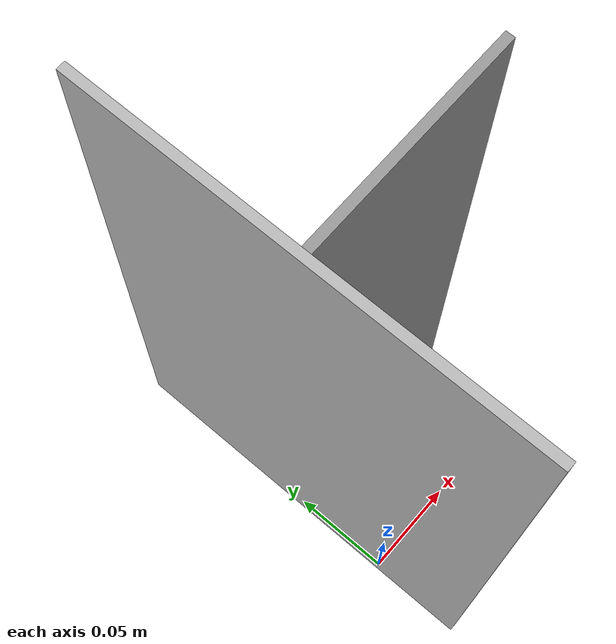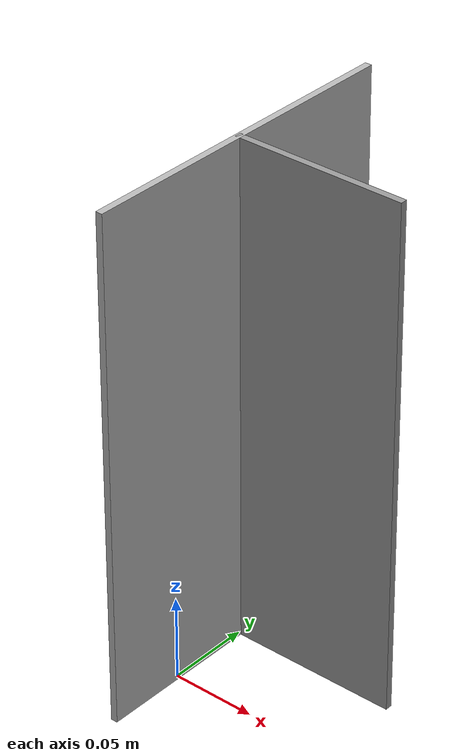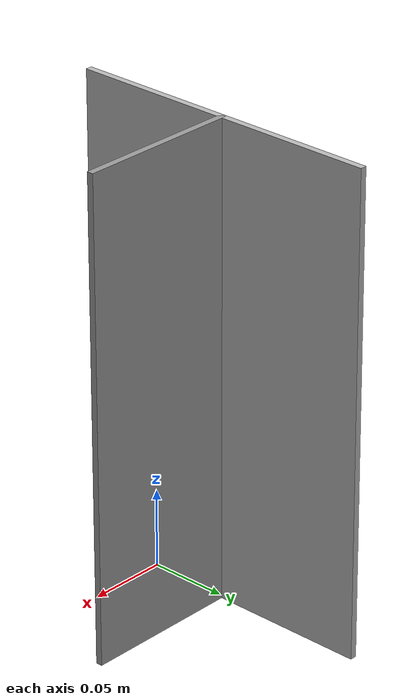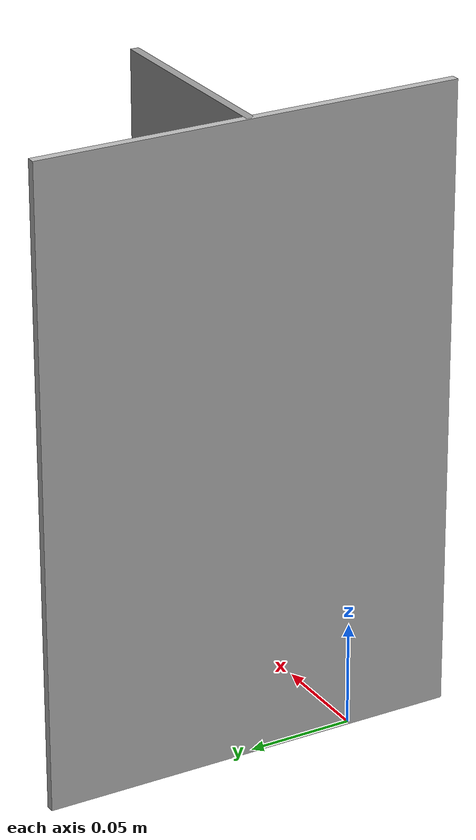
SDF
<?xml version='1.0'?>
<sdf version='1.7'>
  <world name='default'>
    <model name='model_3'>
      <pose>0 0.051 0 0 0 0</pose>
      <link name='Wall_0'>
        <collision name='Wall_0_Collision'>
          <geometry>
            <box>
              <size>0.20 0.004 0.3</size>
            </box>
          </geometry>
          <pose>0 0 0.15 0 -0 0</pose>
        </collision>
        <visual name='Wall_0_Visual'>
          <pose>0 0 0.15 0 -0 0</pose>
          <geometry>
            <box>
              <size>0.20 0.004 0.3</size>
            </box>
          </geometry>
          <meta>
            <layer>0</layer>
          </meta>
        </visual>
        <pose>0 0 0 0 0 1.5708</pose>
        <inertial>
          <mass>1</mass>
          <inertia>
            <ixx>0.166667</ixx>
            <ixy>0</ixy>
            <ixz>0</ixz>
            <iyy>0.166667</iyy>
            <iyz>0</iyz>
            <izz>0.166667</izz>
          </inertia>
        </inertial>
      </link>
      <link name='Wall_1'>
        <collision name='Wall_1_Collision'>
          <geometry>
            <box>
              <size>0.10 0.004 0.3</size>
            </box>
          </geometry>
          <pose>0.05 0 0.15 0 -0 0</pose>
        </collision>
        <visual name='Wall_1_Visual'>
          <pose>0.05 0 0.15 0 -0 0</pose>
          <geometry>
            <box>
              <size>0.102 0.004 0.3</size>
            </box>
          </geometry>
          <material>
            <script>
              <uri>file://media/materials/scripts/gazebo.material</uri>
              <name>Gazebo/Grey</name>
            </script>
            <ambient>1 1 1 1</ambient>
          </material>
          <meta>
            <layer>0</layer>
          </meta>
        </visual>
        <pose>0 0 0 0 0 0</pose>
        <inertial>
          <mass>1</mass>
          <inertia>
            <ixx>0.166667</ixx>
            <ixy>0</ixy>
            <ixz>0</ixz>
            <iyy>0.166667</iyy>
            <iyz>0</iyz>
            <izz>0.166667</izz>
          </inertia>
        </inertial>
      </link>
      <joint name='joint_between_walls' type='fixed'>
        <parent>Wall_0</parent>
        <child>Wall_1</child>
      </joint>
      <static>1</static>
    </model>
  </world>
</sdf>
